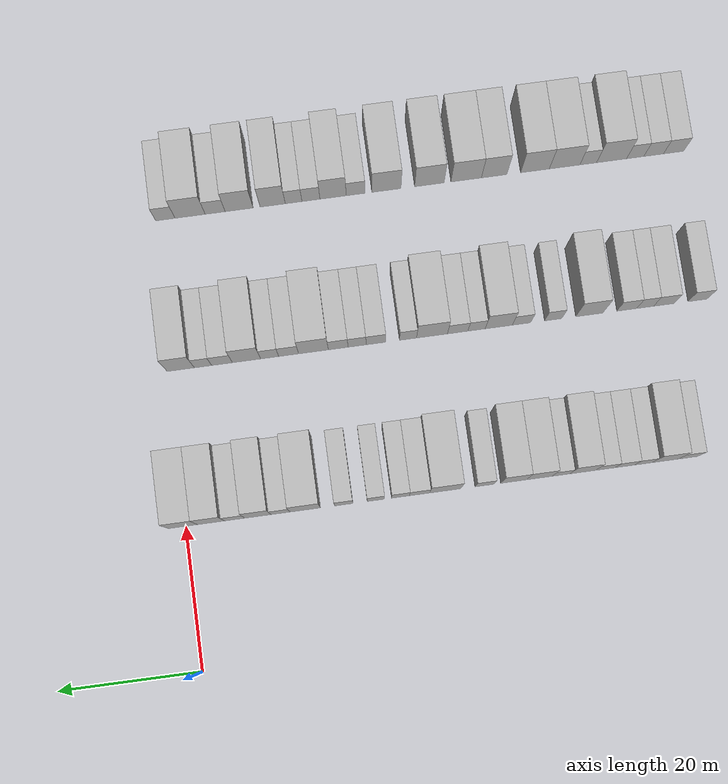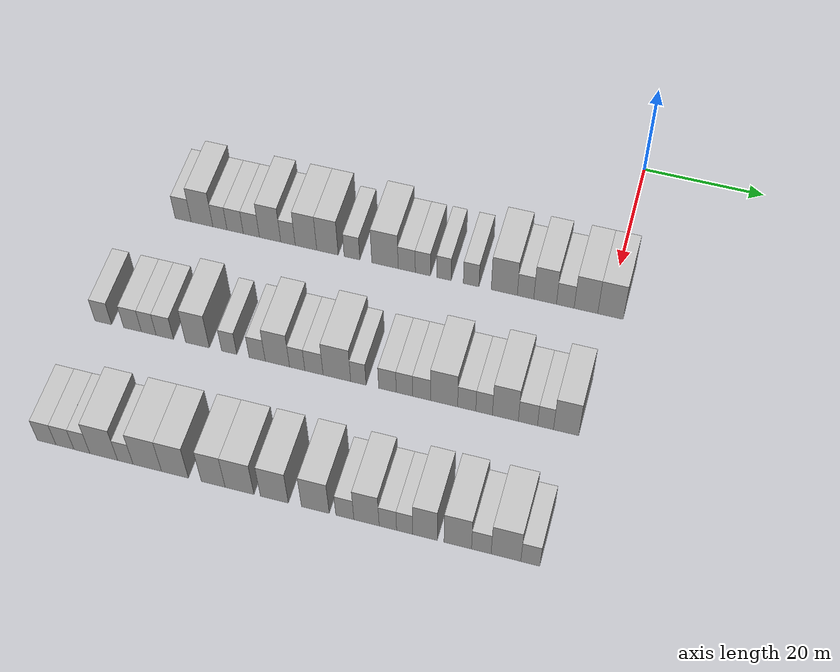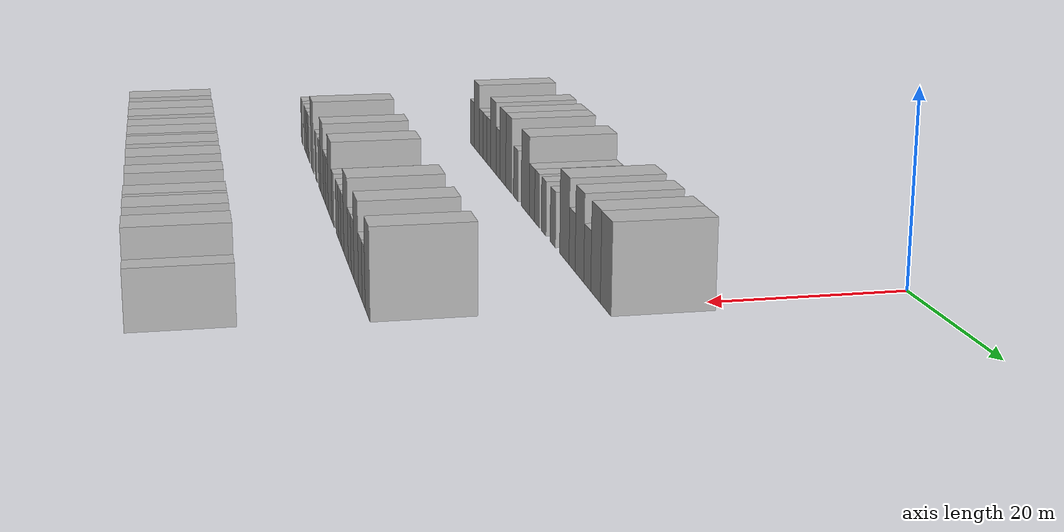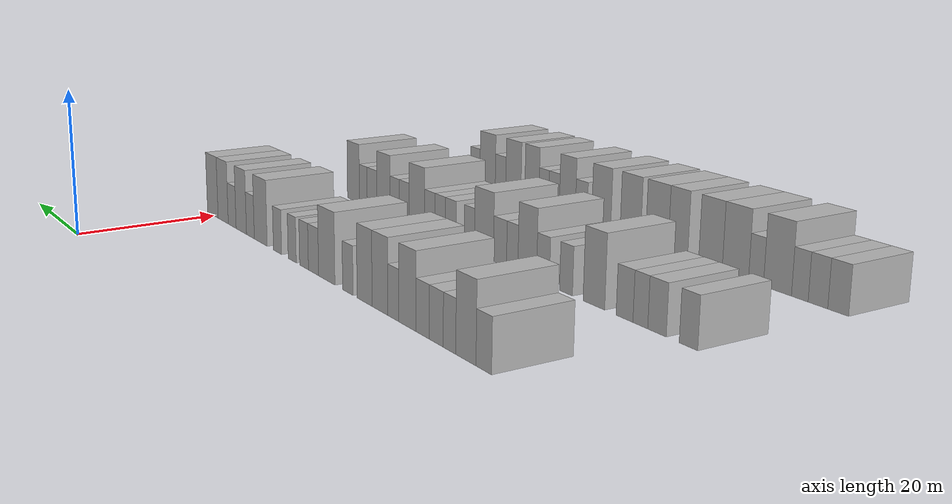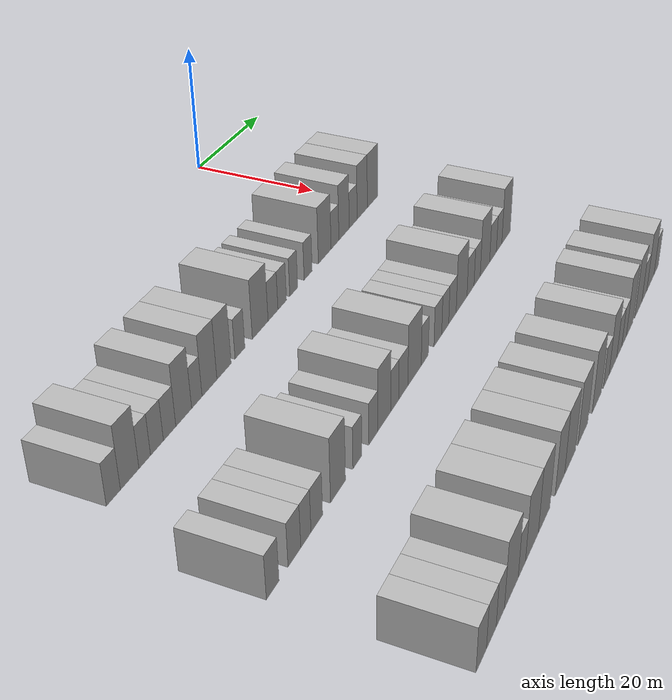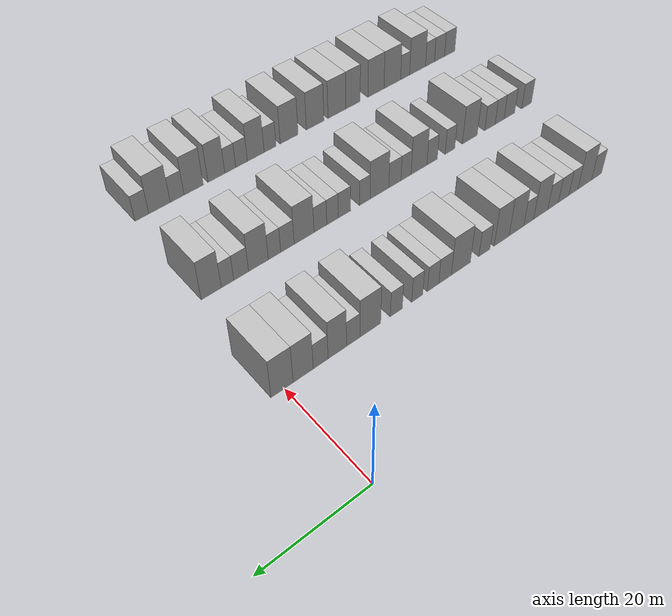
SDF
<sdf version="1.6">
 <world name="default">
  <model name="building_39">
   <static>1</static>
   <pose>25.0000 -70.6655 0 0.000000 0.000000 0.000000</pose>
   <link name="link">
    <pose>0 0 3.00 0 0 0</pose>
    <collision name="collision"><geometry><box><size>10.0000 2.7725 6.0000</size></box></geometry></collision>
    <visual name="visual">
     <cast_shadows>0</cast_shadows>
     <geometry><box><size>10.0000 2.7725 6.0000</size></box></geometry>
     <material>
      <script>
       <uri>model://HANNAS_wall/materials/scripts</uri>
       <uri>model://HANNAS_wall/materials/textures</uri>
       <name>vrc/HANNAS_wall</name>
      </script>
     </material>
    </visual>
   </link>
  </model>
  <model name="building_40">
   <static>1</static>
   <pose>25.0000 -67.4021 0 0.000000 0.000000 0.000000</pose>
   <link name="link">
    <pose>0 0 4.50 0 0 0</pose>
    <collision name="collision"><geometry><box><size>10.0000 3.7543 9.0000</size></box></geometry></collision>
    <visual name="visual">
     <cast_shadows>0</cast_shadows>
     <geometry><box><size>10.0000 3.7543 9.0000</size></box></geometry>
     <material>
      <script>
       <uri>model://HANNAS_wall/materials/scripts</uri>
       <uri>model://HANNAS_wall/materials/textures</uri>
       <name>vrc/HANNAS_wall</name>
      </script>
     </material>
    </visual>
   </link>
  </model>
  <model name="building_41">
   <static>1</static>
   <pose>25.0000 -64.3100 0 0.000000 0.000000 0.000000</pose>
   <link name="link">
    <pose>0 0 3.00 0 0 0</pose>
    <collision name="collision"><geometry><box><size>10.0000 2.4299 6.0000</size></box></geometry></collision>
    <visual name="visual">
     <cast_shadows>0</cast_shadows>
     <geometry><box><size>10.0000 2.4299 6.0000</size></box></geometry>
     <material>
      <script>
       <uri>model://HANNAS_wall/materials/scripts</uri>
       <uri>model://HANNAS_wall/materials/textures</uri>
       <name>vrc/HANNAS_wall</name>
      </script>
     </material>
    </visual>
   </link>
  </model>
  <model name="building_42">
   <static>1</static>
   <pose>25.0000 -61.7016 0 0.000000 0.000000 0.000000</pose>
   <link name="link">
    <pose>0 0 3.00 0 0 0</pose>
    <collision name="collision"><geometry><box><size>10.0000 2.7870 6.0000</size></box></geometry></collision>
    <visual name="visual">
     <cast_shadows>0</cast_shadows>
     <geometry><box><size>10.0000 2.7870 6.0000</size></box></geometry>
     <material>
      <script>
       <uri>model://HANNAS_wall/materials/scripts</uri>
       <uri>model://HANNAS_wall/materials/textures</uri>
       <name>vrc/HANNAS_wall</name>
      </script>
     </material>
    </visual>
   </link>
  </model>
  <model name="building_43">
   <static>1</static>
   <pose>25.0000 -58.9308 0 0.000000 0.000000 0.000000</pose>
   <link name="link">
    <pose>0 0 3.00 0 0 0</pose>
    <collision name="collision"><geometry><box><size>10.0000 2.7546 6.0000</size></box></geometry></collision>
    <visual name="visual">
     <cast_shadows>0</cast_shadows>
     <geometry><box><size>10.0000 2.7546 6.0000</size></box></geometry>
     <material>
      <script>
       <uri>model://HANNAS_wall/materials/scripts</uri>
       <uri>model://HANNAS_wall/materials/textures</uri>
       <name>vrc/HANNAS_wall</name>
      </script>
     </material>
    </visual>
   </link>
  </model>
  <model name="building_44">
   <static>1</static>
   <pose>25.0000 -55.7358 0 0.000000 0.000000 0.000000</pose>
   <link name="link">
    <pose>0 0 4.50 0 0 0</pose>
    <collision name="collision"><geometry><box><size>10.0000 3.6356 9.0000</size></box></geometry></collision>
    <visual name="visual">
     <cast_shadows>0</cast_shadows>
     <geometry><box><size>10.0000 3.6356 9.0000</size></box></geometry>
     <material>
      <script>
       <uri>model://HANNAS_wall/materials/scripts</uri>
       <uri>model://HANNAS_wall/materials/textures</uri>
       <name>vrc/HANNAS_wall</name>
      </script>
     </material>
    </visual>
   </link>
  </model>
  <model name="building_45">
   <static>1</static>
   <pose>25.0000 -52.6814 0 0.000000 0.000000 0.000000</pose>
   <link name="link">
    <pose>0 0 3.00 0 0 0</pose>
    <collision name="collision"><geometry><box><size>10.0000 2.4732 6.0000</size></box></geometry></collision>
    <visual name="visual">
     <cast_shadows>0</cast_shadows>
     <geometry><box><size>10.0000 2.4732 6.0000</size></box></geometry>
     <material>
      <script>
       <uri>model://HANNAS_wall/materials/scripts</uri>
       <uri>model://HANNAS_wall/materials/textures</uri>
       <name>vrc/HANNAS_wall</name>
      </script>
     </material>
    </visual>
   </link>
  </model>
  <model name="building_46">
   <static>1</static>
   <pose>25.0000 -49.6278 0 0.000000 0.000000 0.000000</pose>
   <link name="link">
    <pose>0 0 4.50 0 0 0</pose>
    <collision name="collision"><geometry><box><size>10.0000 3.6339 9.0000</size></box></geometry></collision>
    <visual name="visual">
     <cast_shadows>0</cast_shadows>
     <geometry><box><size>10.0000 3.6339 9.0000</size></box></geometry>
     <material>
      <script>
       <uri>model://HANNAS_wall/materials/scripts</uri>
       <uri>model://HANNAS_wall/materials/textures</uri>
       <name>vrc/HANNAS_wall</name>
      </script>
     </material>
    </visual>
   </link>
  </model>
  <model name="building_47">
   <static>1</static>
   <pose>25.0000 -46.0013 0 0.000000 0.000000 0.000000</pose>
   <link name="link">
    <pose>0 0 4.50 0 0 0</pose>
    <collision name="collision"><geometry><box><size>10.0000 3.6192 9.0000</size></box></geometry></collision>
    <visual name="visual">
     <cast_shadows>0</cast_shadows>
     <geometry><box><size>10.0000 3.6192 9.0000</size></box></geometry>
     <material>
      <script>
       <uri>model://HANNAS_wall/materials/scripts</uri>
       <uri>model://HANNAS_wall/materials/textures</uri>
       <name>vrc/HANNAS_wall</name>
      </script>
     </material>
    </visual>
   </link>
  </model>
  <model name="building_48">
   <static>1</static>
   <pose>25.0000 -41.8764 0 0.000000 0.000000 0.000000</pose>
   <link name="link">
    <pose>0 0 3.00 0 0 0</pose>
    <collision name="collision"><geometry><box><size>10.0000 2.6306 6.0000</size></box></geometry></collision>
    <visual name="visual">
     <cast_shadows>0</cast_shadows>
     <geometry><box><size>10.0000 2.6306 6.0000</size></box></geometry>
     <material>
      <script>
       <uri>model://HANNAS_wall/materials/scripts</uri>
       <uri>model://HANNAS_wall/materials/textures</uri>
       <name>vrc/HANNAS_wall</name>
      </script>
     </material>
    </visual>
   </link>
  </model>
  <model name="building_49">
   <static>1</static>
   <pose>25.0000 -36.3646 0 0.000000 0.000000 0.000000</pose>
   <link name="link">
    <pose>0 0 4.50 0 0 0</pose>
    <collision name="collision"><geometry><box><size>10.0000 4.3930 9.0000</size></box></geometry></collision>
    <visual name="visual">
     <cast_shadows>0</cast_shadows>
     <geometry><box><size>10.0000 4.3930 9.0000</size></box></geometry>
     <material>
      <script>
       <uri>model://HANNAS_wall/materials/scripts</uri>
       <uri>model://HANNAS_wall/materials/textures</uri>
       <name>vrc/HANNAS_wall</name>
      </script>
     </material>
    </visual>
   </link>
  </model>
  <model name="building_50">
   <static>1</static>
   <pose>25.0000 -32.7440 0 0.000000 0.000000 0.000000</pose>
   <link name="link">
    <pose>0 0 3.00 0 0 0</pose>
    <collision name="collision"><geometry><box><size>10.0000 2.8482 6.0000</size></box></geometry></collision>
    <visual name="visual">
     <cast_shadows>0</cast_shadows>
     <geometry><box><size>10.0000 2.8482 6.0000</size></box></geometry>
     <material>
      <script>
       <uri>model://HANNAS_wall/materials/scripts</uri>
       <uri>model://HANNAS_wall/materials/textures</uri>
       <name>vrc/HANNAS_wall</name>
      </script>
     </material>
    </visual>
   </link>
  </model>
  <model name="building_51">
   <static>1</static>
   <pose>25.0000 -30.0622 0 0.000000 0.000000 0.000000</pose>
   <link name="link">
    <pose>0 0 3.00 0 0 0</pose>
    <collision name="collision"><geometry><box><size>10.0000 2.5155 6.0000</size></box></geometry></collision>
    <visual name="visual">
     <cast_shadows>0</cast_shadows>
     <geometry><box><size>10.0000 2.5155 6.0000</size></box></geometry>
     <material>
      <script>
       <uri>model://HANNAS_wall/materials/scripts</uri>
       <uri>model://HANNAS_wall/materials/textures</uri>
       <name>vrc/HANNAS_wall</name>
      </script>
     </material>
    </visual>
   </link>
  </model>
  <model name="building_52">
   <static>1</static>
   <pose>25.0000 -26.5988 0 0.000000 0.000000 0.000000</pose>
   <link name="link">
    <pose>0 0 3.00 0 0 0</pose>
    <collision name="collision"><geometry><box><size>10.0000 2.4112 6.0000</size></box></geometry></collision>
    <visual name="visual">
     <cast_shadows>0</cast_shadows>
     <geometry><box><size>10.0000 2.4112 6.0000</size></box></geometry>
     <material>
      <script>
       <uri>model://HANNAS_wall/materials/scripts</uri>
       <uri>model://HANNAS_wall/materials/textures</uri>
       <name>vrc/HANNAS_wall</name>
      </script>
     </material>
    </visual>
   </link>
  </model>
  <model name="building_53">
   <static>1</static>
   <pose>25.0000 -22.1119 0 0.000000 0.000000 0.000000</pose>
   <link name="link">
    <pose>0 0 3.00 0 0 0</pose>
    <collision name="collision"><geometry><box><size>10.0000 2.5628 6.0000</size></box></geometry></collision>
    <visual name="visual">
     <cast_shadows>0</cast_shadows>
     <geometry><box><size>10.0000 2.5628 6.0000</size></box></geometry>
     <material>
      <script>
       <uri>model://HANNAS_wall/materials/scripts</uri>
       <uri>model://HANNAS_wall/materials/textures</uri>
       <name>vrc/HANNAS_wall</name>
      </script>
     </material>
    </visual>
   </link>
  </model>
  <model name="building_54">
   <static>1</static>
   <pose>25.0000 -16.7084 0 0.000000 0.000000 0.000000</pose>
   <link name="link">
    <pose>0 0 4.50 0 0 0</pose>
    <collision name="collision"><geometry><box><size>10.0000 4.2441 9.0000</size></box></geometry></collision>
    <visual name="visual">
     <cast_shadows>0</cast_shadows>
     <geometry><box><size>10.0000 4.2441 9.0000</size></box></geometry>
     <material>
      <script>
       <uri>model://HANNAS_wall/materials/scripts</uri>
       <uri>model://HANNAS_wall/materials/textures</uri>
       <name>vrc/HANNAS_wall</name>
      </script>
     </material>
    </visual>
   </link>
  </model>
  <model name="building_55">
   <static>1</static>
   <pose>25.0000 -13.2479 0 0.000000 0.000000 0.000000</pose>
   <link name="link">
    <pose>0 0 3.00 0 0 0</pose>
    <collision name="collision"><geometry><box><size>10.0000 2.6769 6.0000</size></box></geometry></collision>
    <visual name="visual">
     <cast_shadows>0</cast_shadows>
     <geometry><box><size>10.0000 2.6769 6.0000</size></box></geometry>
     <material>
      <script>
       <uri>model://HANNAS_wall/materials/scripts</uri>
       <uri>model://HANNAS_wall/materials/textures</uri>
       <name>vrc/HANNAS_wall</name>
      </script>
     </material>
    </visual>
   </link>
  </model>
  <model name="building_56">
   <static>1</static>
   <pose>25.0000 -10.0804 0 0.000000 0.000000 0.000000</pose>
   <link name="link">
    <pose>0 0 4.50 0 0 0</pose>
    <collision name="collision"><geometry><box><size>10.0000 3.6581 9.0000</size></box></geometry></collision>
    <visual name="visual">
     <cast_shadows>0</cast_shadows>
     <geometry><box><size>10.0000 3.6581 9.0000</size></box></geometry>
     <material>
      <script>
       <uri>model://HANNAS_wall/materials/scripts</uri>
       <uri>model://HANNAS_wall/materials/textures</uri>
       <name>vrc/HANNAS_wall</name>
      </script>
     </material>
    </visual>
   </link>
  </model>
  <model name="building_57">
   <static>1</static>
   <pose>25.0000 -6.8253 0 0.000000 0.000000 0.000000</pose>
   <link name="link">
    <pose>0 0 3.00 0 0 0</pose>
    <collision name="collision"><geometry><box><size>10.0000 2.8521 6.0000</size></box></geometry></collision>
    <visual name="visual">
     <cast_shadows>0</cast_shadows>
     <geometry><box><size>10.0000 2.8521 6.0000</size></box></geometry>
     <material>
      <script>
       <uri>model://HANNAS_wall/materials/scripts</uri>
       <uri>model://HANNAS_wall/materials/textures</uri>
       <name>vrc/HANNAS_wall</name>
      </script>
     </material>
    </visual>
   </link>
  </model>
  <model name="building_58">
   <static>1</static>
   <pose>25.0000 -3.5054 0 0.000000 0.000000 0.000000</pose>
   <link name="link">
    <pose>0 0 4.50 0 0 0</pose>
    <collision name="collision"><geometry><box><size>10.0000 3.7877 9.0000</size></box></geometry></collision>
    <visual name="visual">
     <cast_shadows>0</cast_shadows>
     <geometry><box><size>10.0000 3.7877 9.0000</size></box></geometry>
     <material>
      <script>
       <uri>model://HANNAS_wall/materials/scripts</uri>
       <uri>model://HANNAS_wall/materials/textures</uri>
       <name>vrc/HANNAS_wall</name>
      </script>
     </material>
    </visual>
   </link>
  </model>
  <model name="building_59">
   <static>1</static>
   <pose>25.0000 0.4320 0 0.000000 0.000000 0.000000</pose>
   <link name="link">
    <pose>0 0 4.50 0 0 0</pose>
    <collision name="collision"><geometry><box><size>10.0000 4.0872 9.0000</size></box></geometry></collision>
    <visual name="visual">
     <cast_shadows>0</cast_shadows>
     <geometry><box><size>10.0000 4.0872 9.0000</size></box></geometry>
     <material>
      <script>
       <uri>model://HANNAS_wall/materials/scripts</uri>
       <uri>model://HANNAS_wall/materials/textures</uri>
       <name>vrc/HANNAS_wall</name>
      </script>
     </material>
    </visual>
   </link>
  </model>
  <model name="building_166">
   <static>1</static>
   <pose>47.0000 -75.8300 0 0.000000 0.000000 0.000000</pose>
   <link name="link">
    <pose>0 0 3.00 0 0 0</pose>
    <collision name="collision"><geometry><box><size>10.0000 2.7754 6.0000</size></box></geometry></collision>
    <visual name="visual">
     <cast_shadows>0</cast_shadows>
     <geometry><box><size>10.0000 2.7754 6.0000</size></box></geometry>
     <material>
      <script>
       <uri>model://HANNAS_wall/materials/scripts</uri>
       <uri>model://HANNAS_wall/materials/textures</uri>
       <name>vrc/HANNAS_wall</name>
      </script>
     </material>
    </visual>
   </link>
  </model>
  <model name="building_167">
   <static>1</static>
   <pose>47.0000 -70.9643 0 0.000000 0.000000 0.000000</pose>
   <link name="link">
    <pose>0 0 3.00 0 0 0</pose>
    <collision name="collision"><geometry><box><size>10.0000 2.9561 6.0000</size></box></geometry></collision>
    <visual name="visual">
     <cast_shadows>0</cast_shadows>
     <geometry><box><size>10.0000 2.9561 6.0000</size></box></geometry>
     <material>
      <script>
       <uri>model://HANNAS_wall/materials/scripts</uri>
       <uri>model://HANNAS_wall/materials/textures</uri>
       <name>vrc/HANNAS_wall</name>
      </script>
     </material>
    </visual>
   </link>
  </model>
  <model name="building_168">
   <static>1</static>
   <pose>47.0000 -68.2661 0 0.000000 0.000000 0.000000</pose>
   <link name="link">
    <pose>0 0 3.00 0 0 0</pose>
    <collision name="collision"><geometry><box><size>10.0000 2.4402 6.0000</size></box></geometry></collision>
    <visual name="visual">
     <cast_shadows>0</cast_shadows>
     <geometry><box><size>10.0000 2.4402 6.0000</size></box></geometry>
     <material>
      <script>
       <uri>model://HANNAS_wall/materials/scripts</uri>
       <uri>model://HANNAS_wall/materials/textures</uri>
       <name>vrc/HANNAS_wall</name>
      </script>
     </material>
    </visual>
   </link>
  </model>
  <model name="building_169">
   <static>1</static>
   <pose>47.0000 -65.6162 0 0.000000 0.000000 0.000000</pose>
   <link name="link">
    <pose>0 0 3.00 0 0 0</pose>
    <collision name="collision"><geometry><box><size>10.0000 2.8597 6.0000</size></box></geometry></collision>
    <visual name="visual">
     <cast_shadows>0</cast_shadows>
     <geometry><box><size>10.0000 2.8597 6.0000</size></box></geometry>
     <material>
      <script>
       <uri>model://HANNAS_wall/materials/scripts</uri>
       <uri>model://HANNAS_wall/materials/textures</uri>
       <name>vrc/HANNAS_wall</name>
      </script>
     </material>
    </visual>
   </link>
  </model>
  <model name="building_170">
   <static>1</static>
   <pose>47.0000 -60.2285 0 0.000000 0.000000 0.000000</pose>
   <link name="link">
    <pose>0 0 4.50 0 0 0</pose>
    <collision name="collision"><geometry><box><size>10.0000 3.9156 9.0000</size></box></geometry></collision>
    <visual name="visual">
     <cast_shadows>0</cast_shadows>
     <geometry><box><size>10.0000 3.9156 9.0000</size></box></geometry>
     <material>
      <script>
       <uri>model://HANNAS_wall/materials/scripts</uri>
       <uri>model://HANNAS_wall/materials/textures</uri>
       <name>vrc/HANNAS_wall</name>
      </script>
     </material>
    </visual>
   </link>
  </model>
  <model name="building_171">
   <static>1</static>
   <pose>47.0000 -55.0294 0 0.000000 0.000000 0.000000</pose>
   <link name="link">
    <pose>0 0 3.00 0 0 0</pose>
    <collision name="collision"><geometry><box><size>10.0000 2.4826 6.0000</size></box></geometry></collision>
    <visual name="visual">
     <cast_shadows>0</cast_shadows>
     <geometry><box><size>10.0000 2.4826 6.0000</size></box></geometry>
     <material>
      <script>
       <uri>model://HANNAS_wall/materials/scripts</uri>
       <uri>model://HANNAS_wall/materials/textures</uri>
       <name>vrc/HANNAS_wall</name>
      </script>
     </material>
    </visual>
   </link>
  </model>
  <model name="building_172">
   <static>1</static>
   <pose>47.0000 -50.4775 0 0.000000 0.000000 0.000000</pose>
   <link name="link">
    <pose>0 0 3.00 0 0 0</pose>
    <collision name="collision"><geometry><box><size>10.0000 2.6211 6.0000</size></box></geometry></collision>
    <visual name="visual">
     <cast_shadows>0</cast_shadows>
     <geometry><box><size>10.0000 2.6211 6.0000</size></box></geometry>
     <material>
      <script>
       <uri>model://HANNAS_wall/materials/scripts</uri>
       <uri>model://HANNAS_wall/materials/textures</uri>
       <name>vrc/HANNAS_wall</name>
      </script>
     </material>
    </visual>
   </link>
  </model>
  <model name="building_173">
   <static>1</static>
   <pose>47.0000 -47.2069 0 0.000000 0.000000 0.000000</pose>
   <link name="link">
    <pose>0 0 4.50 0 0 0</pose>
    <collision name="collision"><geometry><box><size>10.0000 3.9201 9.0000</size></box></geometry></collision>
    <visual name="visual">
     <cast_shadows>0</cast_shadows>
     <geometry><box><size>10.0000 3.9201 9.0000</size></box></geometry>
     <material>
      <script>
       <uri>model://HANNAS_wall/materials/scripts</uri>
       <uri>model://HANNAS_wall/materials/textures</uri>
       <name>vrc/HANNAS_wall</name>
      </script>
     </material>
    </visual>
   </link>
  </model>
  <model name="building_174">
   <static>1</static>
   <pose>47.0000 -44.0097 0 0.000000 0.000000 0.000000</pose>
   <link name="link">
    <pose>0 0 3.00 0 0 0</pose>
    <collision name="collision"><geometry><box><size>10.0000 2.4743 6.0000</size></box></geometry></collision>
    <visual name="visual">
     <cast_shadows>0</cast_shadows>
     <geometry><box><size>10.0000 2.4743 6.0000</size></box></geometry>
     <material>
      <script>
       <uri>model://HANNAS_wall/materials/scripts</uri>
       <uri>model://HANNAS_wall/materials/textures</uri>
       <name>vrc/HANNAS_wall</name>
      </script>
     </material>
    </visual>
   </link>
  </model>
  <model name="building_175">
   <static>1</static>
   <pose>47.0000 -41.3091 0 0.000000 0.000000 0.000000</pose>
   <link name="link">
    <pose>0 0 3.00 0 0 0</pose>
    <collision name="collision"><geometry><box><size>10.0000 2.9270 6.0000</size></box></geometry></collision>
    <visual name="visual">
     <cast_shadows>0</cast_shadows>
     <geometry><box><size>10.0000 2.9270 6.0000</size></box></geometry>
     <material>
      <script>
       <uri>model://HANNAS_wall/materials/scripts</uri>
       <uri>model://HANNAS_wall/materials/textures</uri>
       <name>vrc/HANNAS_wall</name>
      </script>
     </material>
    </visual>
   </link>
  </model>
  <model name="building_176">
   <static>1</static>
   <pose>47.0000 -37.6354 0 0.000000 0.000000 0.000000</pose>
   <link name="link">
    <pose>0 0 4.50 0 0 0</pose>
    <collision name="collision"><geometry><box><size>10.0000 4.4205 9.0000</size></box></geometry></collision>
    <visual name="visual">
     <cast_shadows>0</cast_shadows>
     <geometry><box><size>10.0000 4.4205 9.0000</size></box></geometry>
     <material>
      <script>
       <uri>model://HANNAS_wall/materials/scripts</uri>
       <uri>model://HANNAS_wall/materials/textures</uri>
       <name>vrc/HANNAS_wall</name>
      </script>
     </material>
    </visual>
   </link>
  </model>
  <model name="building_177">
   <static>1</static>
   <pose>47.0000 -34.2029 0 0.000000 0.000000 0.000000</pose>
   <link name="link">
    <pose>0 0 3.00 0 0 0</pose>
    <collision name="collision"><geometry><box><size>10.0000 2.4446 6.0000</size></box></geometry></collision>
    <visual name="visual">
     <cast_shadows>0</cast_shadows>
     <geometry><box><size>10.0000 2.4446 6.0000</size></box></geometry>
     <material>
      <script>
       <uri>model://HANNAS_wall/materials/scripts</uri>
       <uri>model://HANNAS_wall/materials/textures</uri>
       <name>vrc/HANNAS_wall</name>
      </script>
     </material>
    </visual>
   </link>
  </model>
  <model name="building_178">
   <static>1</static>
   <pose>47.0000 -29.5875 0 0.000000 0.000000 0.000000</pose>
   <link name="link">
    <pose>0 0 3.00 0 0 0</pose>
    <collision name="collision"><geometry><box><size>10.0000 2.7861 6.0000</size></box></geometry></collision>
    <visual name="visual">
     <cast_shadows>0</cast_shadows>
     <geometry><box><size>10.0000 2.7861 6.0000</size></box></geometry>
     <material>
      <script>
       <uri>model://HANNAS_wall/materials/scripts</uri>
       <uri>model://HANNAS_wall/materials/textures</uri>
       <name>vrc/HANNAS_wall</name>
      </script>
     </material>
    </visual>
   </link>
  </model>
  <model name="building_179">
   <static>1</static>
   <pose>47.0000 -26.9073 0 0.000000 0.000000 0.000000</pose>
   <link name="link">
    <pose>0 0 3.00 0 0 0</pose>
    <collision name="collision"><geometry><box><size>10.0000 2.5744 6.0000</size></box></geometry></collision>
    <visual name="visual">
     <cast_shadows>0</cast_shadows>
     <geometry><box><size>10.0000 2.5744 6.0000</size></box></geometry>
     <material>
      <script>
       <uri>model://HANNAS_wall/materials/scripts</uri>
       <uri>model://HANNAS_wall/materials/textures</uri>
       <name>vrc/HANNAS_wall</name>
      </script>
     </material>
    </visual>
   </link>
  </model>
  <model name="building_180">
   <static>1</static>
   <pose>47.0000 -24.2150 0 0.000000 0.000000 0.000000</pose>
   <link name="link">
    <pose>0 0 3.00 0 0 0</pose>
    <collision name="collision"><geometry><box><size>10.0000 2.8102 6.0000</size></box></geometry></collision>
    <visual name="visual">
     <cast_shadows>0</cast_shadows>
     <geometry><box><size>10.0000 2.8102 6.0000</size></box></geometry>
     <material>
      <script>
       <uri>model://HANNAS_wall/materials/scripts</uri>
       <uri>model://HANNAS_wall/materials/textures</uri>
       <name>vrc/HANNAS_wall</name>
      </script>
     </material>
    </visual>
   </link>
  </model>
  <model name="building_181">
   <static>1</static>
   <pose>47.0000 -20.6847 0 0.000000 0.000000 0.000000</pose>
   <link name="link">
    <pose>0 0 4.50 0 0 0</pose>
    <collision name="collision"><geometry><box><size>10.0000 4.2503 9.0000</size></box></geometry></collision>
    <visual name="visual">
     <cast_shadows>0</cast_shadows>
     <geometry><box><size>10.0000 4.2503 9.0000</size></box></geometry>
     <material>
      <script>
       <uri>model://HANNAS_wall/materials/scripts</uri>
       <uri>model://HANNAS_wall/materials/textures</uri>
       <name>vrc/HANNAS_wall</name>
      </script>
     </material>
    </visual>
   </link>
  </model>
  <model name="building_182">
   <static>1</static>
   <pose>47.0000 -17.1445 0 0.000000 0.000000 0.000000</pose>
   <link name="link">
    <pose>0 0 3.00 0 0 0</pose>
    <collision name="collision"><geometry><box><size>10.0000 2.8301 6.0000</size></box></geometry></collision>
    <visual name="visual">
     <cast_shadows>0</cast_shadows>
     <geometry><box><size>10.0000 2.8301 6.0000</size></box></geometry>
     <material>
      <script>
       <uri>model://HANNAS_wall/materials/scripts</uri>
       <uri>model://HANNAS_wall/materials/textures</uri>
       <name>vrc/HANNAS_wall</name>
      </script>
     </material>
    </visual>
   </link>
  </model>
  <model name="building_183">
   <static>1</static>
   <pose>47.0000 -14.4391 0 0.000000 0.000000 0.000000</pose>
   <link name="link">
    <pose>0 0 3.00 0 0 0</pose>
    <collision name="collision"><geometry><box><size>10.0000 2.5807 6.0000</size></box></geometry></collision>
    <visual name="visual">
     <cast_shadows>0</cast_shadows>
     <geometry><box><size>10.0000 2.5807 6.0000</size></box></geometry>
     <material>
      <script>
       <uri>model://HANNAS_wall/materials/scripts</uri>
       <uri>model://HANNAS_wall/materials/textures</uri>
       <name>vrc/HANNAS_wall</name>
      </script>
     </material>
    </visual>
   </link>
  </model>
  <model name="building_184">
   <static>1</static>
   <pose>47.0000 -11.1426 0 0.000000 0.000000 0.000000</pose>
   <link name="link">
    <pose>0 0 4.50 0 0 0</pose>
    <collision name="collision"><geometry><box><size>10.0000 4.0122 9.0000</size></box></geometry></collision>
    <visual name="visual">
     <cast_shadows>0</cast_shadows>
     <geometry><box><size>10.0000 4.0122 9.0000</size></box></geometry>
     <material>
      <script>
       <uri>model://HANNAS_wall/materials/scripts</uri>
       <uri>model://HANNAS_wall/materials/textures</uri>
       <name>vrc/HANNAS_wall</name>
      </script>
     </material>
    </visual>
   </link>
  </model>
  <model name="building_185">
   <static>1</static>
   <pose>47.0000 -7.6595 0 0.000000 0.000000 0.000000</pose>
   <link name="link">
    <pose>0 0 3.00 0 0 0</pose>
    <collision name="collision"><geometry><box><size>10.0000 2.9540 6.0000</size></box></geometry></collision>
    <visual name="visual">
     <cast_shadows>0</cast_shadows>
     <geometry><box><size>10.0000 2.9540 6.0000</size></box></geometry>
     <material>
      <script>
       <uri>model://HANNAS_wall/materials/scripts</uri>
       <uri>model://HANNAS_wall/materials/textures</uri>
       <name>vrc/HANNAS_wall</name>
      </script>
     </material>
    </visual>
   </link>
  </model>
  <model name="building_186">
   <static>1</static>
   <pose>47.0000 -4.9512 0 0.000000 0.000000 0.000000</pose>
   <link name="link">
    <pose>0 0 3.00 0 0 0</pose>
    <collision name="collision"><geometry><box><size>10.0000 2.4625 6.0000</size></box></geometry></collision>
    <visual name="visual">
     <cast_shadows>0</cast_shadows>
     <geometry><box><size>10.0000 2.4625 6.0000</size></box></geometry>
     <material>
      <script>
       <uri>model://HANNAS_wall/materials/scripts</uri>
       <uri>model://HANNAS_wall/materials/textures</uri>
       <name>vrc/HANNAS_wall</name>
      </script>
     </material>
    </visual>
   </link>
  </model>
  <model name="building_187">
   <static>1</static>
   <pose>47.0000 -1.7841 0 0.000000 0.000000 0.000000</pose>
   <link name="link">
    <pose>0 0 4.50 0 0 0</pose>
    <collision name="collision"><geometry><box><size>10.0000 3.8717 9.0000</size></box></geometry></collision>
    <visual name="visual">
     <cast_shadows>0</cast_shadows>
     <geometry><box><size>10.0000 3.8717 9.0000</size></box></geometry>
     <material>
      <script>
       <uri>model://HANNAS_wall/materials/scripts</uri>
       <uri>model://HANNAS_wall/materials/textures</uri>
       <name>vrc/HANNAS_wall</name>
      </script>
     </material>
    </visual>
   </link>
  </model>
  <model name="building_299">
   <static>1</static>
   <pose>69.0000 -76.0853 0 0.000000 0.000000 0.000000</pose>
   <link name="link">
    <pose>0 0 3.00 0 0 0</pose>
    <collision name="collision"><geometry><box><size>10.0000 2.9644 6.0000</size></box></geometry></collision>
    <visual name="visual">
     <cast_shadows>0</cast_shadows>
     <geometry><box><size>10.0000 2.9644 6.0000</size></box></geometry>
     <material>
      <script>
       <uri>model://HANNAS_wall/materials/scripts</uri>
       <uri>model://HANNAS_wall/materials/textures</uri>
       <name>vrc/HANNAS_wall</name>
      </script>
     </material>
    </visual>
   </link>
  </model>
  <model name="building_300">
   <static>1</static>
   <pose>69.0000 -73.1655 0 0.000000 0.000000 0.000000</pose>
   <link name="link">
    <pose>0 0 3.00 0 0 0</pose>
    <collision name="collision"><geometry><box><size>10.0000 2.8751 6.0000</size></box></geometry></collision>
    <visual name="visual">
     <cast_shadows>0</cast_shadows>
     <geometry><box><size>10.0000 2.8751 6.0000</size></box></geometry>
     <material>
      <script>
       <uri>model://HANNAS_wall/materials/scripts</uri>
       <uri>model://HANNAS_wall/materials/textures</uri>
       <name>vrc/HANNAS_wall</name>
      </script>
     </material>
    </visual>
   </link>
  </model>
  <model name="building_301">
   <static>1</static>
   <pose>69.0000 -70.4659 0 0.000000 0.000000 0.000000</pose>
   <link name="link">
    <pose>0 0 3.00 0 0 0</pose>
    <collision name="collision"><geometry><box><size>10.0000 2.5240 6.0000</size></box></geometry></collision>
    <visual name="visual">
     <cast_shadows>0</cast_shadows>
     <geometry><box><size>10.0000 2.5240 6.0000</size></box></geometry>
     <material>
      <script>
       <uri>model://HANNAS_wall/materials/scripts</uri>
       <uri>model://HANNAS_wall/materials/textures</uri>
       <name>vrc/HANNAS_wall</name>
      </script>
     </material>
    </visual>
   </link>
  </model>
  <model name="building_302">
   <static>1</static>
   <pose>69.0000 -67.0020 0 0.000000 0.000000 0.000000</pose>
   <link name="link">
    <pose>0 0 4.50 0 0 0</pose>
    <collision name="collision"><geometry><box><size>10.0000 4.4039 9.0000</size></box></geometry></collision>
    <visual name="visual">
     <cast_shadows>0</cast_shadows>
     <geometry><box><size>10.0000 4.4039 9.0000</size></box></geometry>
     <material>
      <script>
       <uri>model://HANNAS_wall/materials/scripts</uri>
       <uri>model://HANNAS_wall/materials/textures</uri>
       <name>vrc/HANNAS_wall</name>
      </script>
     </material>
    </visual>
   </link>
  </model>
  <model name="building_303">
   <static>1</static>
   <pose>69.0000 -63.5794 0 0.000000 0.000000 0.000000</pose>
   <link name="link">
    <pose>0 0 3.00 0 0 0</pose>
    <collision name="collision"><geometry><box><size>10.0000 2.4414 6.0000</size></box></geometry></collision>
    <visual name="visual">
     <cast_shadows>0</cast_shadows>
     <geometry><box><size>10.0000 2.4414 6.0000</size></box></geometry>
     <material>
      <script>
       <uri>model://HANNAS_wall/materials/scripts</uri>
       <uri>model://HANNAS_wall/materials/textures</uri>
       <name>vrc/HANNAS_wall</name>
      </script>
     </material>
    </visual>
   </link>
  </model>
  <model name="building_304">
   <static>1</static>
   <pose>69.0000 -60.1220 0 0.000000 0.000000 0.000000</pose>
   <link name="link">
    <pose>0 0 4.50 0 0 0</pose>
    <collision name="collision"><geometry><box><size>10.0000 4.4734 9.0000</size></box></geometry></collision>
    <visual name="visual">
     <cast_shadows>0</cast_shadows>
     <geometry><box><size>10.0000 4.4734 9.0000</size></box></geometry>
     <material>
      <script>
       <uri>model://HANNAS_wall/materials/scripts</uri>
       <uri>model://HANNAS_wall/materials/textures</uri>
       <name>vrc/HANNAS_wall</name>
      </script>
     </material>
    </visual>
   </link>
  </model>
  <model name="building_305">
   <static>1</static>
   <pose>69.0000 -55.7838 0 0.000000 0.000000 0.000000</pose>
   <link name="link">
    <pose>0 0 4.50 0 0 0</pose>
    <collision name="collision"><geometry><box><size>10.0000 4.2029 9.0000</size></box></geometry></collision>
    <visual name="visual">
     <cast_shadows>0</cast_shadows>
     <geometry><box><size>10.0000 4.2029 9.0000</size></box></geometry>
     <material>
      <script>
       <uri>model://HANNAS_wall/materials/scripts</uri>
       <uri>model://HANNAS_wall/materials/textures</uri>
       <name>vrc/HANNAS_wall</name>
      </script>
     </material>
    </visual>
   </link>
  </model>
  <model name="building_306">
   <static>1</static>
   <pose>69.0000 -49.8290 0 0.000000 0.000000 0.000000</pose>
   <link name="link">
    <pose>0 0 4.50 0 0 0</pose>
    <collision name="collision"><geometry><box><size>10.0000 3.7067 9.0000</size></box></geometry></collision>
    <visual name="visual">
     <cast_shadows>0</cast_shadows>
     <geometry><box><size>10.0000 3.7067 9.0000</size></box></geometry>
     <material>
      <script>
       <uri>model://HANNAS_wall/materials/scripts</uri>
       <uri>model://HANNAS_wall/materials/textures</uri>
       <name>vrc/HANNAS_wall</name>
      </script>
     </material>
    </visual>
   </link>
  </model>
  <model name="building_307">
   <static>1</static>
   <pose>69.0000 -45.7508 0 0.000000 0.000000 0.000000</pose>
   <link name="link">
    <pose>0 0 4.50 0 0 0</pose>
    <collision name="collision"><geometry><box><size>10.0000 4.4497 9.0000</size></box></geometry></collision>
    <visual name="visual">
     <cast_shadows>0</cast_shadows>
     <geometry><box><size>10.0000 4.4497 9.0000</size></box></geometry>
     <material>
      <script>
       <uri>model://HANNAS_wall/materials/scripts</uri>
       <uri>model://HANNAS_wall/materials/textures</uri>
       <name>vrc/HANNAS_wall</name>
      </script>
     </material>
    </visual>
   </link>
  </model>
  <model name="building_308">
   <static>1</static>
   <pose>69.0000 -40.3850 0 0.000000 0.000000 0.000000</pose>
   <link name="link">
    <pose>0 0 4.50 0 0 0</pose>
    <collision name="collision"><geometry><box><size>10.0000 4.2820 9.0000</size></box></geometry></collision>
    <visual name="visual">
     <cast_shadows>0</cast_shadows>
     <geometry><box><size>10.0000 4.2820 9.0000</size></box></geometry>
     <material>
      <script>
       <uri>model://HANNAS_wall/materials/scripts</uri>
       <uri>model://HANNAS_wall/materials/textures</uri>
       <name>vrc/HANNAS_wall</name>
      </script>
     </material>
    </visual>
   </link>
  </model>
  <model name="building_309">
   <static>1</static>
   <pose>69.0000 -34.1328 0 0.000000 0.000000 0.000000</pose>
   <link name="link">
    <pose>0 0 4.50 0 0 0</pose>
    <collision name="collision"><geometry><box><size>10.0000 4.2224 9.0000</size></box></geometry></collision>
    <visual name="visual">
     <cast_shadows>0</cast_shadows>
     <geometry><box><size>10.0000 4.2224 9.0000</size></box></geometry>
     <material>
      <script>
       <uri>model://HANNAS_wall/materials/scripts</uri>
       <uri>model://HANNAS_wall/materials/textures</uri>
       <name>vrc/HANNAS_wall</name>
      </script>
     </material>
    </visual>
   </link>
  </model>
  <model name="building_310">
   <static>1</static>
   <pose>69.0000 -29.6555 0 0.000000 0.000000 0.000000</pose>
   <link name="link">
    <pose>0 0 3.00 0 0 0</pose>
    <collision name="collision"><geometry><box><size>10.0000 2.7320 6.0000</size></box></geometry></collision>
    <visual name="visual">
     <cast_shadows>0</cast_shadows>
     <geometry><box><size>10.0000 2.7320 6.0000</size></box></geometry>
     <material>
      <script>
       <uri>model://HANNAS_wall/materials/scripts</uri>
       <uri>model://HANNAS_wall/materials/textures</uri>
       <name>vrc/HANNAS_wall</name>
      </script>
     </material>
    </visual>
   </link>
  </model>
  <model name="building_311">
   <static>1</static>
   <pose>69.0000 -26.3865 0 0.000000 0.000000 0.000000</pose>
   <link name="link">
    <pose>0 0 4.50 0 0 0</pose>
    <collision name="collision"><geometry><box><size>10.0000 3.8061 9.0000</size></box></geometry></collision>
    <visual name="visual">
     <cast_shadows>0</cast_shadows>
     <geometry><box><size>10.0000 3.8061 9.0000</size></box></geometry>
     <material>
      <script>
       <uri>model://HANNAS_wall/materials/scripts</uri>
       <uri>model://HANNAS_wall/materials/textures</uri>
       <name>vrc/HANNAS_wall</name>
      </script>
     </material>
    </visual>
   </link>
  </model>
  <model name="building_312">
   <static>1</static>
   <pose>69.0000 -23.1761 0 0.000000 0.000000 0.000000</pose>
   <link name="link">
    <pose>0 0 3.00 0 0 0</pose>
    <collision name="collision"><geometry><box><size>10.0000 2.6146 6.0000</size></box></geometry></collision>
    <visual name="visual">
     <cast_shadows>0</cast_shadows>
     <geometry><box><size>10.0000 2.6146 6.0000</size></box></geometry>
     <material>
      <script>
       <uri>model://HANNAS_wall/materials/scripts</uri>
       <uri>model://HANNAS_wall/materials/textures</uri>
       <name>vrc/HANNAS_wall</name>
      </script>
     </material>
    </visual>
   </link>
  </model>
  <model name="building_313">
   <static>1</static>
   <pose>69.0000 -20.6594 0 0.000000 0.000000 0.000000</pose>
   <link name="link">
    <pose>0 0 3.00 0 0 0</pose>
    <collision name="collision"><geometry><box><size>10.0000 2.4189 6.0000</size></box></geometry></collision>
    <visual name="visual">
     <cast_shadows>0</cast_shadows>
     <geometry><box><size>10.0000 2.4189 6.0000</size></box></geometry>
     <material>
      <script>
       <uri>model://HANNAS_wall/materials/scripts</uri>
       <uri>model://HANNAS_wall/materials/textures</uri>
       <name>vrc/HANNAS_wall</name>
      </script>
     </material>
    </visual>
   </link>
  </model>
  <model name="building_314">
   <static>1</static>
   <pose>69.0000 -17.6222 0 0.000000 0.000000 0.000000</pose>
   <link name="link">
    <pose>0 0 4.50 0 0 0</pose>
    <collision name="collision"><geometry><box><size>10.0000 3.6554 9.0000</size></box></geometry></collision>
    <visual name="visual">
     <cast_shadows>0</cast_shadows>
     <geometry><box><size>10.0000 3.6554 9.0000</size></box></geometry>
     <material>
      <script>
       <uri>model://HANNAS_wall/materials/scripts</uri>
       <uri>model://HANNAS_wall/materials/textures</uri>
       <name>vrc/HANNAS_wall</name>
      </script>
     </material>
    </visual>
   </link>
  </model>
  <model name="building_315">
   <static>1</static>
   <pose>69.0000 -12.7620 0 0.000000 0.000000 0.000000</pose>
   <link name="link">
    <pose>0 0 4.50 0 0 0</pose>
    <collision name="collision"><geometry><box><size>10.0000 4.0651 9.0000</size></box></geometry></collision>
    <visual name="visual">
     <cast_shadows>0</cast_shadows>
     <geometry><box><size>10.0000 4.0651 9.0000</size></box></geometry>
     <material>
      <script>
       <uri>model://HANNAS_wall/materials/scripts</uri>
       <uri>model://HANNAS_wall/materials/textures</uri>
       <name>vrc/HANNAS_wall</name>
      </script>
     </material>
    </visual>
   </link>
  </model>
  <model name="building_316">
   <static>1</static>
   <pose>69.0000 -9.2850 0 0.000000 0.000000 0.000000</pose>
   <link name="link">
    <pose>0 0 3.00 0 0 0</pose>
    <collision name="collision"><geometry><box><size>10.0000 2.8890 6.0000</size></box></geometry></collision>
    <visual name="visual">
     <cast_shadows>0</cast_shadows>
     <geometry><box><size>10.0000 2.8890 6.0000</size></box></geometry>
     <material>
      <script>
       <uri>model://HANNAS_wall/materials/scripts</uri>
       <uri>model://HANNAS_wall/materials/textures</uri>
       <name>vrc/HANNAS_wall</name>
      </script>
     </material>
    </visual>
   </link>
  </model>
  <model name="building_317">
   <static>1</static>
   <pose>69.0000 -5.6616 0 0.000000 0.000000 0.000000</pose>
   <link name="link">
    <pose>0 0 4.50 0 0 0</pose>
    <collision name="collision"><geometry><box><size>10.0000 4.3577 9.0000</size></box></geometry></collision>
    <visual name="visual">
     <cast_shadows>0</cast_shadows>
     <geometry><box><size>10.0000 4.3577 9.0000</size></box></geometry>
     <material>
      <script>
       <uri>model://HANNAS_wall/materials/scripts</uri>
       <uri>model://HANNAS_wall/materials/textures</uri>
       <name>vrc/HANNAS_wall</name>
      </script>
     </material>
    </visual>
   </link>
  </model>
  <model name="building_318">
   <static>1</static>
   <pose>69.0000 -2.0866 0 0.000000 0.000000 0.000000</pose>
   <link name="link">
    <pose>0 0 3.00 0 0 0</pose>
    <collision name="collision"><geometry><box><size>10.0000 2.7923 6.0000</size></box></geometry></collision>
    <visual name="visual">
     <cast_shadows>0</cast_shadows>
     <geometry><box><size>10.0000 2.7923 6.0000</size></box></geometry>
     <material>
      <script>
       <uri>model://HANNAS_wall/materials/scripts</uri>
       <uri>model://HANNAS_wall/materials/textures</uri>
       <name>vrc/HANNAS_wall</name>
      </script>
     </material>
    </visual>
   </link>
  </model>
 </world>
</sdf>
